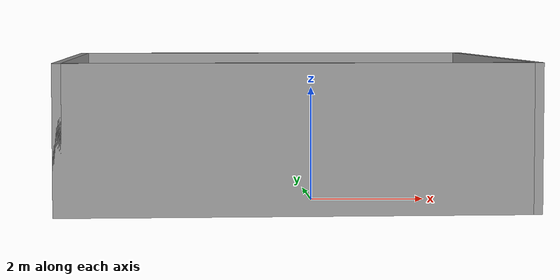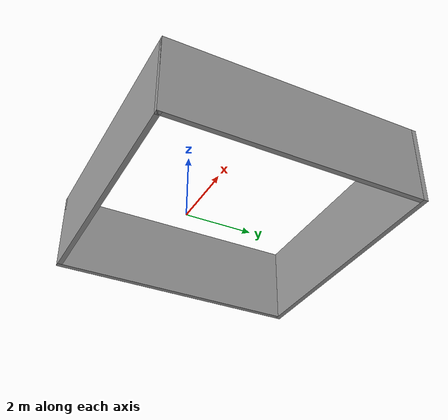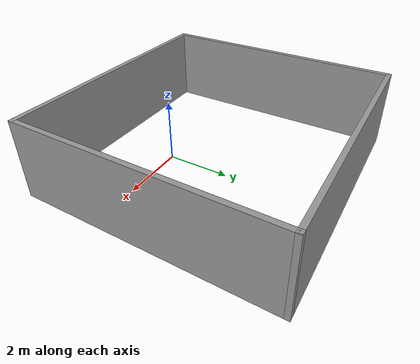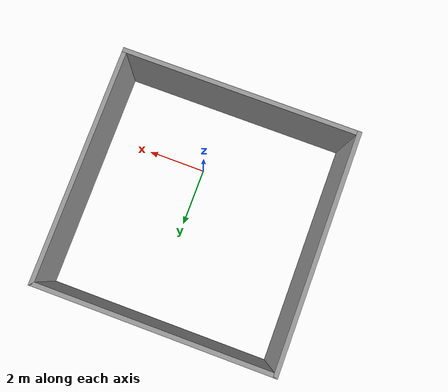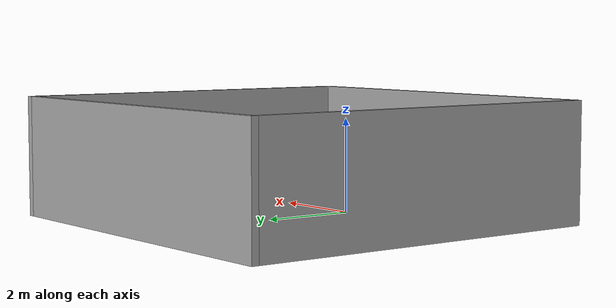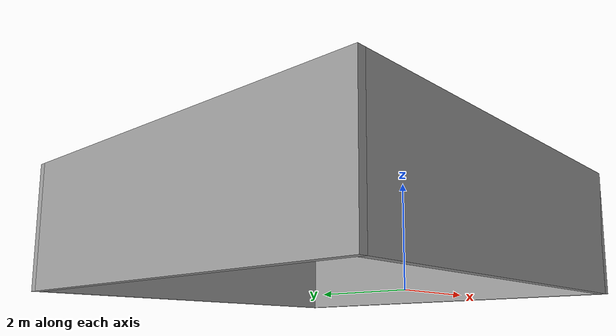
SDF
<?xml version='1.0'?>
<sdf version='1.7'>
  <model name='my_room2'>
    <pose>-0.377 1.575 0 0 -0 0</pose>
    <link name='Wall_15'>
      <collision name='Wall_15_Collision'>
        <geometry>
          <box>
            <size>8 0.15 2.5</size>
          </box>
        </geometry>
        <pose>0 0 1.25 0 -0 0</pose>
      </collision>
      <visual name='Wall_15_Visual'>
        <pose>0 0 1.25 0 -0 0</pose>
        <geometry>
          <box>
            <size>8 0.15 2.5</size>
          </box>
        </geometry>
        <material>
          <script>
            <uri>file://media/materials/scripts/gazebo.material</uri>
            <name>Gazebo/Grey</name>
          </script>
          <ambient>1 1 1 1</ambient>
        </material>
        <meta>
          <layer>0</layer>
        </meta>
      </visual>
      <pose>-3.925 -0 0 0 -0 -1.5708</pose>
    </link>
    <link name='Wall_16'>
      <collision name='Wall_16_Collision'>
        <geometry>
          <box>
            <size>8 0.15 2.5</size>
          </box>
        </geometry>
        <pose>0 0 1.25 0 -0 0</pose>
      </collision>
      <visual name='Wall_16_Visual'>
        <pose>0 0 1.25 0 -0 0</pose>
        <geometry>
          <box>
            <size>8 0.15 2.5</size>
          </box>
        </geometry>
        <material>
          <script>
            <uri>file://media/materials/scripts/gazebo.material</uri>
            <name>Gazebo/Grey</name>
          </script>
          <ambient>1 1 1 1</ambient>
        </material>
        <meta>
          <layer>0</layer>
        </meta>
      </visual>
      <pose>-0 -3.925 0 0 -0 0</pose>
    </link>
    <link name='Wall_17'>
      <collision name='Wall_17_Collision'>
        <geometry>
          <box>
            <size>8 0.15 2.5</size>
          </box>
        </geometry>
        <pose>0 0 1.25 0 -0 0</pose>
      </collision>
      <visual name='Wall_17_Visual'>
        <pose>0 0 1.25 0 -0 0</pose>
        <geometry>
          <box>
            <size>8 0.15 2.5</size>
          </box>
        </geometry>
        <material>
          <script>
            <uri>file://media/materials/scripts/gazebo.material</uri>
            <name>Gazebo/Grey</name>
          </script>
          <ambient>1 1 1 1</ambient>
        </material>
        <meta>
          <layer>0</layer>
        </meta>
      </visual>
      <pose>3.925 -0 0 0 -0 1.5708</pose>
    </link>
    <link name='Wall_18'>
      <collision name='Wall_18_Collision'>
        <geometry>
          <box>
            <size>8 0.15 2.5</size>
          </box>
        </geometry>
        <pose>0 0 1.25 0 -0 0</pose>
      </collision>
      <visual name='Wall_18_Visual'>
        <pose>0 0 1.25 0 -0 0</pose>
        <geometry>
          <box>
            <size>8 0.15 2.5</size>
          </box>
        </geometry>
        <material>
          <script>
            <uri>file://media/materials/scripts/gazebo.material</uri>
            <name>Gazebo/Grey</name>
          </script>
          <ambient>1 1 1 1</ambient>
        </material>
        <meta>
          <layer>0</layer>
        </meta>
      </visual>
      <pose>-0 3.925 0 0 -0 3.14159</pose>
    </link>
    <static>1</static>
  </model>
</sdf>
